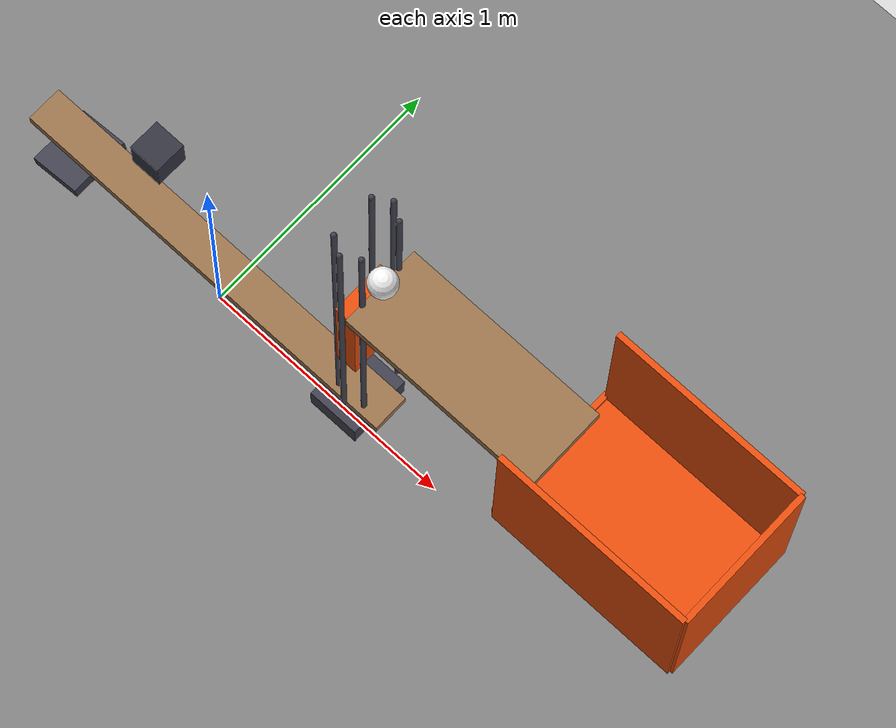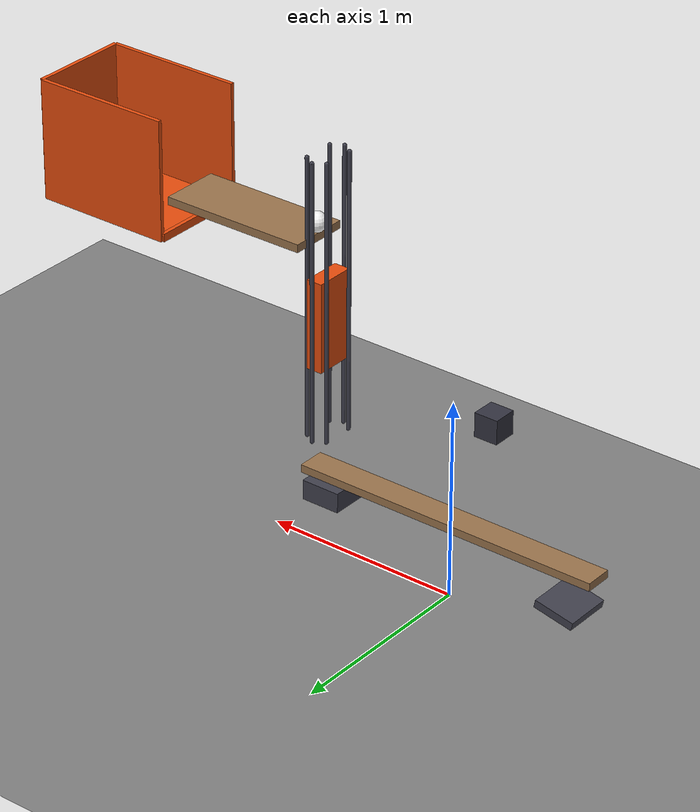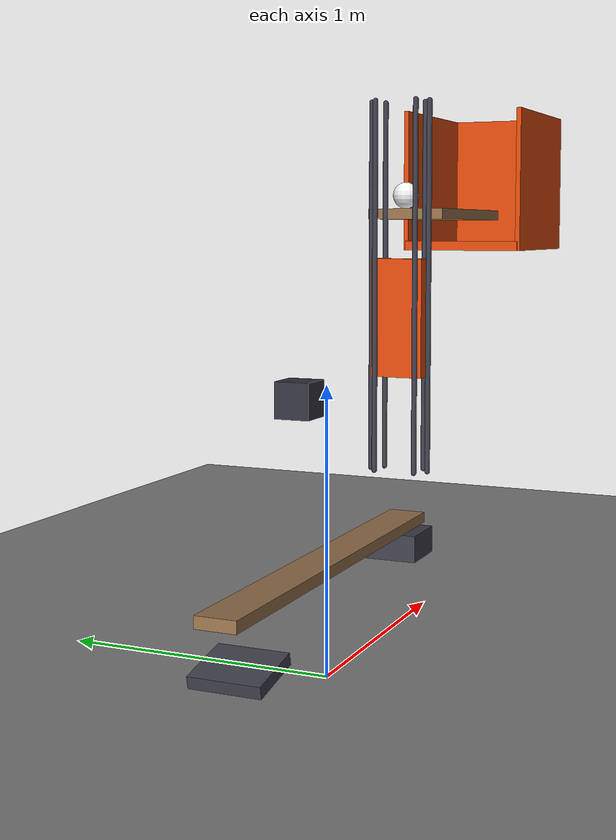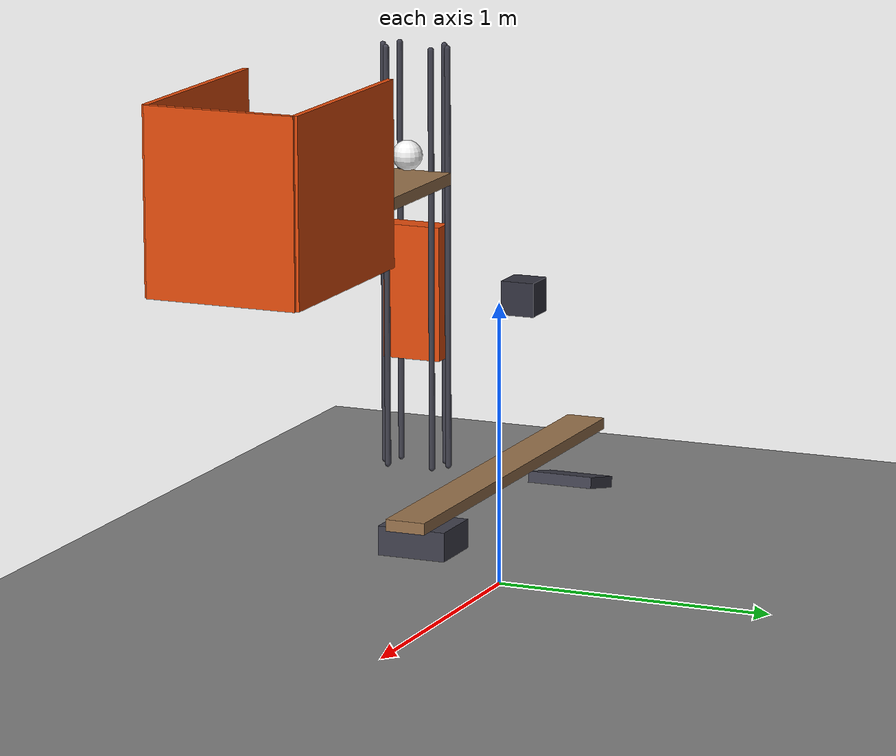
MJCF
<mujoco model="stopped_lever_and_guided_vertical_striker">
  <compiler angle="radian"/>
  <option timestep="0.002"/>
  <worldbody>
    <geom name="floor" type="plane" size="6 6 0.1" friction="0.8 0.005 0.002"/>
    <body name="lower lever stop">
      <geom name="lower lever stop" type="box" pos="-0.65 0 0.22095" size="0.102233 0.12 0.02" euler="0 -0.209385 0" friction="1 0.005 0.0001" rgba="0.25 0.25 0.3 1"/>
    </body>
    <body name="upper lever stop">
      <geom name="upper lever stop" type="box" pos="0.65 0 0.33" size="0.1 0.12 0.05" friction="1 0.005 0.0001" rgba="0.25 0.25 0.3 1"/>
    </body>
    <body name="lever" pos="0 0 0.4">
      <joint name="lever_hinge" type="hinge" pos="0 0 0" axis="0 1 0" limited="true" range="-0.20944 0" damping="0.5" armature="0.2"/>
      <geom name="lever" type="box" pos="0 0 0" size="0.8 0.07 0.02" mass="1" friction="1 0.005 0.0001" rgba="0.6 0.45 0.3 1"/>
    </body>
    <body name="weight" pos="-0.22 0 0.98">
      <freejoint/>
      <geom name="weight" type="box" pos="0 0 0" size="0.06 0.06 0.06" mass="8" friction="1 0.005 0.0001" rgba="0.2 0.2 0.25 1"/>
    </body>
    <body name="near left guide">
      <geom name="near left guide_rail" type="capsule" size="0.01" fromto="0.645 0.08 0.6 0.645 0.08 2" friction="0 0 0" rgba="0.25 0.25 0.3 1"/>
    </body>
    <body name="near right guide">
      <geom name="near right guide_rail" type="capsule" size="0.01" fromto="0.645 -0.08 0.6 0.645 -0.08 2" friction="0 0 0" rgba="0.25 0.25 0.3 1"/>
    </body>
    <body name="far left guide">
      <geom name="far left guide_rail" type="capsule" size="0.01" fromto="0.755 0.08 0.6 0.755 0.08 2" friction="0 0 0" rgba="0.25 0.25 0.3 1"/>
    </body>
    <body name="far right guide">
      <geom name="far right guide_rail" type="capsule" size="0.01" fromto="0.755 -0.08 0.6 0.755 -0.08 2" friction="0 0 0" rgba="0.25 0.25 0.3 1"/>
    </body>
    <body name="left guide">
      <geom name="left guide_rail" type="capsule" size="0.01" fromto="0.7 0.115 0.6 0.7 0.115 2" friction="0 0 0" rgba="0.25 0.25 0.3 1"/>
    </body>
    <body name="right guide">
      <geom name="right guide_rail" type="capsule" size="0.01" fromto="0.7 -0.115 0.6 0.7 -0.115 2" friction="0 0 0" rgba="0.25 0.25 0.3 1"/>
    </body>
    <body name="lift" pos="0.7 0 1.185">
      <freejoint/>
      <geom name="lift" type="box" pos="0 0 0" size="0.04 0.1 0.225" mass="0.3" friction="0 0 0" rgba="0.9 0.3 0.05 1"/>
    </body>
    <body name="bridge">
      <geom name="bridge" type="box" pos="1.126 0 1.58" size="0.374 0.15 0.02" friction="0.4 0.001 0.0001" solref="0.01 1" rgba="0.6 0.45 0.3 1"/>
    </body>
    <body name="cup">
      <geom name="cup_base" type="box" pos="1.8 0 1.44" size="0.35 0.25 0.01" friction="1 0.02 0.02" solref="0.01 1" rgba="0.9 0.3 0.05 1"/>
      <geom name="cup_near_wall" type="box" pos="1.45 0 1.45" size="0.01 0.25 0.02" friction="1 0.02 0.02" solref="0.01 1" rgba="0.9 0.3 0.05 1"/>
      <geom name="cup_far_wall" type="box" pos="2.15 0 1.73" size="0.01 0.25 0.3" friction="1 0.02 0.02" solref="0.01 1" rgba="0.9 0.3 0.05 1"/>
      <geom name="cup_left_wall" type="box" pos="1.8 0.25 1.73" size="0.35 0.01 0.3" friction="1 0.02 0.02" solref="0.01 1" rgba="0.9 0.3 0.05 1"/>
      <geom name="cup_right_wall" type="box" pos="1.8 -0.25 1.73" size="0.35 0.01 0.3" friction="1 0.02 0.02" solref="0.01 1" rgba="0.9 0.3 0.05 1"/>
    </body>
    <body name="ball" pos="0.765 0 1.65">
      <freejoint/>
      <geom name="ball" type="sphere" pos="0 0 0" size="0.05" mass="0.25" condim="6" friction="0.4 0.001 0.0001" solref="0.01 1" rgba="0.95 0.95 0.95 1"/>
    </body>
  </worldbody>
  <keyframe>
    <key name="start" qpos="0 -0.22 0 0.98 1 0 0 0 0.7 0 1.185 1 0 0 0 0.765 0 1.65 1 0 0 0" qvel="0 0 0 0 0 0 0 0 0 0 0 0 0 0 0 0 0 0 0"/>
  </keyframe>
</mujoco>
